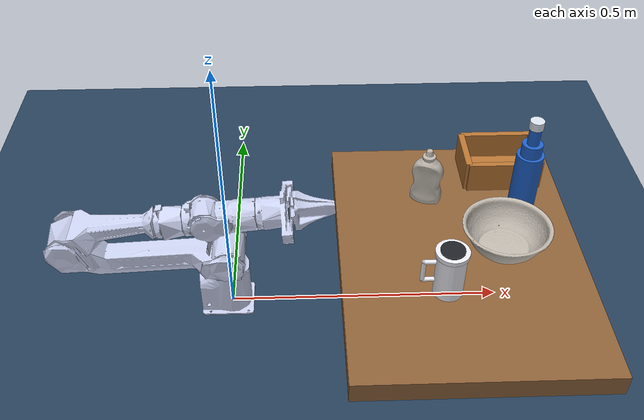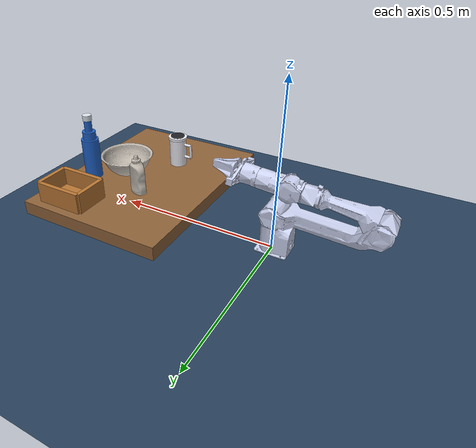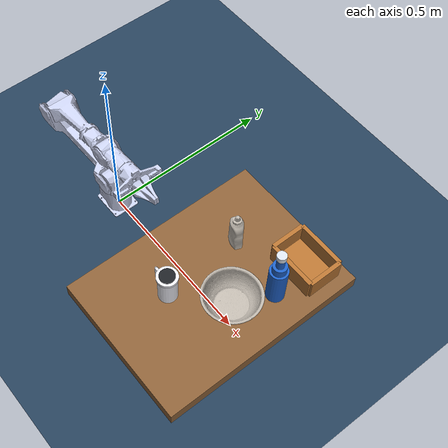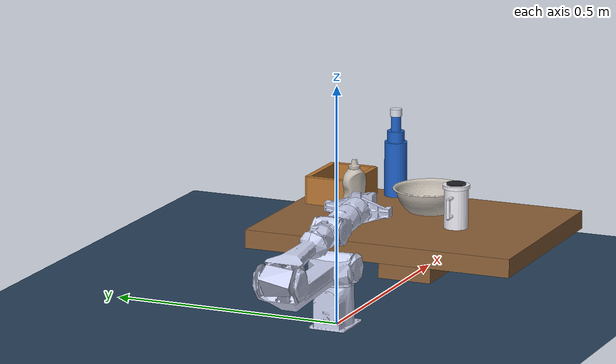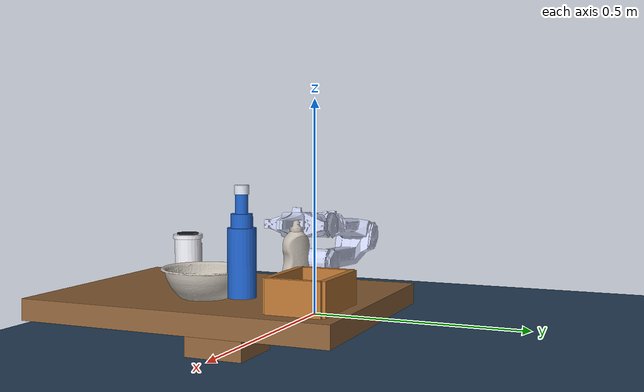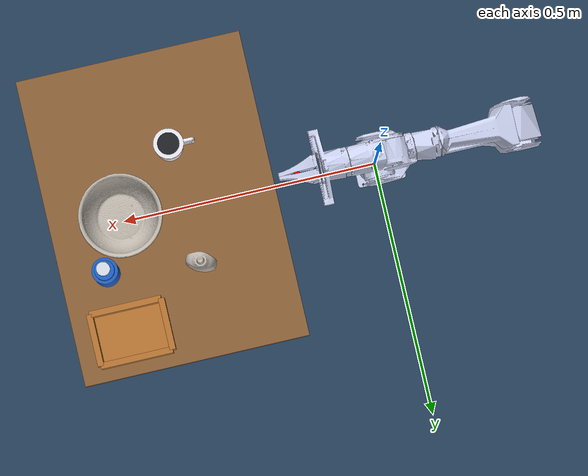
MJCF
<mujoco model="piper_real_multitask_scene">
  <include file="piper_real.xml"/>

  <statistic center="0.35 0 0.25" extent="0.9"/>

  <visual>
    <headlight diffuse="0.6 0.6 0.6" ambient="0.35 0.35 0.35" specular="0 0 0"/>
    <rgba haze="0.15 0.25 0.35 1"/>
    <global azimuth="140" elevation="-25" offwidth="1280" offheight="720"/>
  </visual>

  <asset>
    <texture type="skybox" builtin="gradient" rgb1="0.3 0.5 0.7" rgb2="0 0 0" width="512" height="3072"/>
    <texture type="2d" name="groundplane" builtin="checker" mark="edge" rgb1="0.2 0.3 0.4"
      rgb2="0.1 0.2 0.3" markrgb="0.8 0.8 0.8" width="300" height="300"/>
    <material name="groundplane" texture="groundplane" texuniform="true" texrepeat="5 5" reflectance="0.0"/>
    <material name="table_mat" rgba="0.55 0.38 0.22 1" reflectance="0.0"/>
    <material name="cup_mat" rgba="0.92 0.92 0.95 1"/>
    <material name="cup_inner_mat" rgba="0.42 0.43 0.46 1"/>
    <material name="cup_shadow_mat" rgba="0.12 0.13 0.15 1"/>
    <material name="demo_bottle_mat" rgba="0.12 0.38 0.78 1"/>
    <material name="demo_bottle_cap_mat" rgba="0.85 0.88 0.92 1"/>
    <material name="demo_box_mat" rgba="0.72 0.46 0.20 1"/>

    <!-- YCB 024_bowl: photo-scanned ceramic bowl. The texture is what makes COCO-YOLO detect a
         'bowl' (untextured synthetic bowls are not recognized -- see DEVLOG). Shared asset. -->
    <mesh name="bowl_ycb" file="../piper/assets/bowl_ycb.obj"/>
    <texture name="bowl_ycb_tex" type="2d" file="../piper/assets/bowl_ycb.png"/>
    <material name="bowl_ycb_mat" texture="bowl_ycb_tex" specular="0.3" shininess="0.4"/>
    <!-- YCB 006_mustard_bottle, scaled 0.6 so its narrow axis (~40 mm) fits the gripper. -->
    <mesh name="bottle_ycb" file="../piper/assets/bottle_ycb.obj" scale="0.6 0.6 0.6"/>
    <texture name="bottle_ycb_tex" type="2d" file="../piper/assets/bottle_ycb.png"/>
    <material name="bottle_ycb_mat" texture="bottle_ycb_tex" specular="0.2" shininess="0.3"/>
  </asset>

  <worldbody>
    <light pos="0.35 0 1.6" dir="0 0 -1" directional="true"/>
    <geom name="floor" size="0 0 0.05" type="plane" material="groundplane"/>

    <!-- low table in front of the arm; top surface at z = 0.10 + 0.02 = 0.12 -->
    <body name="table" pos="0.42 0 0">
      <geom name="table_top" type="box" size="0.22 0.30 0.02" pos="0 0 0.10" material="table_mat"/>
      <geom name="table_ped" type="box" size="0.06 0.06 0.05" pos="0 0 0.05" material="table_mat"/>
    </body>

    <!-- cup: graspable mug. Main cylinder = physical collision/mass; extra zero-contact geoms
         (rim, inner shadow, handle) make YOLO see a cup instead of a plain cylinder. -->
    <body name="cup" pos="0.38 -0.11 0.17">
      <freejoint/>
      <geom name="cup_body_collision" type="cylinder" size="0.026 0.045" material="cup_mat"
        density="235" friction="1.5 0.1 0.01"/>
      <geom name="cup_rim" type="cylinder" size="0.029 0.004" pos="0 0 0.045"
        material="cup_mat" density="0" contype="0" conaffinity="0"/>
      <geom name="cup_opening" type="cylinder" size="0.021 0.002" pos="0 0 0.050"
        material="cup_shadow_mat" density="0" contype="0" conaffinity="0"/>
      <geom name="cup_inner_wall" type="cylinder" size="0.022 0.030" pos="0 0 0.016"
        material="cup_inner_mat" density="0" contype="0" conaffinity="0"/>
      <geom name="cup_handle_upper" type="capsule" size="0.004"
        fromto="-0.024 0 0.025 -0.046 0 0.025"
        material="cup_mat" density="0" contype="0" conaffinity="0"/>
      <geom name="cup_handle_lower" type="capsule" size="0.004"
        fromto="-0.024 0 -0.015 -0.046 0 -0.015"
        material="cup_mat" density="0" contype="0" conaffinity="0"/>
      <geom name="cup_handle_outer" type="capsule" size="0.004"
        fromto="-0.046 0 -0.015 -0.046 0 0.025"
        material="cup_mat" density="0" contype="0" conaffinity="0"/>
    </body>

    <body name="ycb_bottle" pos="0.37 0.12 0.14">
      <freejoint/>
      <geom name="ycb_bottle_collision" type="cylinder" size="0.026 0.045" pos="0 0 0.045"
        density="235" friction="1.5 0.1 0.01" rgba="0.5 0.5 0.5 0"/>
      <geom name="ycb_bottle_geom" type="mesh" mesh="bottle_ycb" material="bottle_ycb_mat"
        pos="0.0092 0.0141 0" density="0" contype="0" conaffinity="0"/>
    </body>

    <body name="bowl" pos="0.50 0.0 0">
      <geom name="bowl_visual" type="mesh" mesh="bowl_ycb" material="bowl_ycb_mat"
        pos="0.015 0.043 0.121" contype="0" conaffinity="0"/>
      <geom name="bowl_floor" type="cylinder" size="0.070 0.004" pos="0 0 0.126"
        rgba="0.5 0.1 0.1 0" friction="2 0.1 0.01"/>
      <geom name="bowl_rim_n" type="box" size="0.072 0.008 0.020" pos="0 0.072 0.140" rgba="0.5 0.1 0.1 0"/>
      <geom name="bowl_rim_s" type="box" size="0.072 0.008 0.020" pos="0 -0.072 0.140" rgba="0.5 0.1 0.1 0"/>
      <geom name="bowl_rim_e" type="box" size="0.008 0.072 0.020" pos="0.072 0 0.140" rgba="0.5 0.1 0.1 0"/>
      <geom name="bowl_rim_w" type="box" size="0.008 0.072 0.020" pos="-0.072 0 0.140" rgba="0.5 0.1 0.1 0"/>
    </body>

    <!-- Viewer-only context props. Benchmark reset disables these geoms; the demo reset keeps
         them on the positive-y side, outside the yellow target's grasp corridor and main ROI. -->
    <body name="demo_bottle" pos="0.55 0.10 0.195">
      <freejoint/>
      <geom name="demo_bottle_body" type="cylinder" size="0.025 0.060"
        material="demo_bottle_mat" density="240" friction="1.2 0.1 0.01"/>
      <geom name="demo_bottle_shoulder" type="cylinder" size="0.019 0.015"
        pos="0 0 0.069" material="demo_bottle_mat" density="0"/>
      <geom name="demo_bottle_neck" type="cylinder" size="0.011 0.018"
        pos="0 0 0.099" material="demo_bottle_mat" density="0"/>
      <geom name="demo_bottle_cap" type="cylinder" size="0.013 0.008"
        pos="0 0 0.125" material="demo_bottle_cap_mat" density="0"/>
    </body>

    <body name="demo_box" pos="0.53 0.22 0.12">
      <geom name="demo_box_floor" type="box" size="0.070 0.050 0.004"
        pos="0 0 0.004" material="demo_box_mat"/>
      <geom name="demo_box_wall_n" type="box" size="0.070 0.006 0.030"
        pos="0 0.050 0.030" material="demo_box_mat"/>
      <geom name="demo_box_wall_s" type="box" size="0.070 0.006 0.030"
        pos="0 -0.050 0.030" material="demo_box_mat"/>
      <geom name="demo_box_wall_e" type="box" size="0.006 0.050 0.030"
        pos="0.070 0 0.030" material="demo_box_mat"/>
      <geom name="demo_box_wall_w" type="box" size="0.006 0.050 0.030"
        pos="-0.070 0 0.030" material="demo_box_mat"/>
    </body>

    <!-- fixed world camera aimed at the table region (evidence framing + a stable YOLO fallback). -->
    <camera name="world_cam" pos="0.45 -0.60 0.55" mode="targetbody" target="table" fovy="52"/>
  </worldbody>
</mujoco>

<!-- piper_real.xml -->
<mujoco model="piper_real">
  <!-- No meshdir: robot mesh files carry the "meshes/" prefix, so a scene that includes this
       file can also reference sibling assets (e.g. ../piper/assets/*.obj) without a meshdir clash. -->
  <compiler angle="radian"/>
  <option integrator="implicitfast" cone="elliptic" impratio="10"/>

  <default>
    <default class="piper">
      <joint frictionloss="0.2" armature="0.01"/>
      <default class="finger">
        <joint frictionloss="0" armature="0.005"/>
      </default>
    </default>
  </default>

  <asset>
    <mesh name="base_link" content_type="model/stl" file="meshes/base_link.STL"/>
    <mesh name="link1" content_type="model/stl" file="meshes/link1.STL"/>
    <mesh name="link2" content_type="model/stl" file="meshes/link2.STL"/>
    <mesh name="link3" content_type="model/stl" file="meshes/link3.STL"/>
    <mesh name="link4" content_type="model/stl" file="meshes/link4.STL"/>
    <mesh name="link5" content_type="model/stl" file="meshes/link5.STL"/>
    <mesh name="link6" content_type="model/stl" file="meshes/link6.STL"/>
    <mesh name="gripper_base" content_type="model/stl" file="meshes/gripper_base.STL"/>
    <mesh name="link7" content_type="model/stl" file="meshes/link7.STL"/>
    <mesh name="link8" content_type="model/stl" file="meshes/link8.STL"/>
  </asset>

  <worldbody>
    <body name="base_link" pos="0 0 0" gravcomp="1">
      <geom type="mesh" contype="0" conaffinity="0" group="1" density="0" rgba="0.792157 0.819608 0.933333 1" mesh="base_link"/>
      <geom type="mesh" group="3" rgba="0.792157 0.819608 0.933333 1" mesh="base_link" contype="2" conaffinity="2"/>
      <body name="link1" pos="0 0 0.123" childclass="piper" gravcomp="1">
      <inertial pos="0.000121505 0.000104632 -0.00438597" quat="0.682111 0.730899 0.0143111 -0.0175062" mass="0.71" diaginertia="0.000489262 0.000439887 0.000404551"/>
      <joint name="joint1" pos="0 0 0" axis="0 0 1" range="-2.618 2.168" actuatorfrcrange="-100 100"/>
      <geom type="mesh" contype="0" conaffinity="0" group="1" density="0" rgba="0.792157 0.819608 0.933333 1" mesh="link1"/>
      <geom type="mesh" group="3" rgba="0.792157 0.819608 0.933333 1" mesh="link1" contype="2" conaffinity="2"/>
      <body name="link2" quat="0.0480084 -0.0480134 -0.705476 -0.705474" gravcomp="1">
        <inertial pos="0.198666 -0.0109269 0.00142122" quat="0.510131 0.475585 0.525075 0.48773" mass="1.17" diaginertia="0.0679032 0.067745 0.00111966"/>
        <joint name="joint2" pos="0 0 0" axis="0 0 1" range="0 3.14" actuatorfrcrange="-100 100"/>
        <geom type="mesh" contype="0" conaffinity="0" group="1" density="0" rgba="0.792157 0.819608 0.933333 1" mesh="link2"/>
        <geom type="mesh" group="3" rgba="0.792157 0.819608 0.933333 1" mesh="link2" contype="2" conaffinity="2"/>
        <body name="link3" pos="0.28503 0 0" quat="0.623996 0 0 -0.781427" gravcomp="1">
          <inertial pos="-0.0202738 -0.133915 -0.000458683" quat="0.706282 0.705111 0.0532202 0.0339395" mass="0.5" diaginertia="0.0138227 0.0138032 0.000244685"/>
          <joint name="joint3" pos="0 0 0" axis="0 0 1" range="-2.967 0" actuatorfrcrange="-100 100"/>
          <geom type="mesh" contype="0" conaffinity="0" group="1" density="0" rgba="0.792157 0.819608 0.933333 1" mesh="link3"/>
          <geom type="mesh" group="3" rgba="0.792157 0.819608 0.933333 1" mesh="link3" contype="2" conaffinity="2"/>
          <body name="link4" pos="-0.021984 -0.25075 0" quat="0.707105 0.707108 0 0" gravcomp="1">
            <inertial pos="-9.66636e-05 0.000876064 -0.00496881" quat="0.714689 -0.0948484 0.0635223 0.690064" mass="0.38" diaginertia="0.000191586 0.000185052 0.000152863"/>
            <joint name="joint4" pos="0 0 0" axis="0 0 1" range="-1.745 1.745" actuatorfrcrange="-100 100"/>
            <geom type="mesh" contype="0" conaffinity="0" group="1" density="0" rgba="0.792157 0.819608 0.933333 1" mesh="link4"/>
            <geom type="mesh" group="3" rgba="0.792157 0.819608 0.933333 1" mesh="link4" contype="2" conaffinity="2"/>
            <body name="link5" quat="0.707105 -0.707108 0 0" gravcomp="1">
              <inertial pos="-4.10554e-05 -0.0566487 -0.00372058" quat="0.709589 0.704614 0.00134613 -0.00132656" mass="0.383" diaginertia="0.00166169 0.00164328 0.000185028"/>
              <joint name="joint5" pos="0 0 0" axis="0 0 1" range="-1.22 1.22" actuatorfrcrange="-100 100"/>
              <geom type="mesh" contype="0" conaffinity="0" group="1" density="0" rgba="0.792157 0.819608 0.933333 1" mesh="link5"/>
              <geom type="mesh" group="3" rgba="0.792157 0.819608 0.933333 1" mesh="link5" contype="2" conaffinity="2"/>
              <body name="link6" pos="8.8259e-05 -0.091 0" quat="0.707105 0.707108 0 0" gravcomp="1">
                <inertial pos="-0.000182344 7.9409e-05 0.0316207" quat="0.999977 6.30204e-05 0.00678001 0.000789387" mass="0.457" diaginertia="0.000938049 0.000723078 0.000395388"/>
                <joint name="joint6" pos="0 0 0" axis="0 0 1" range="-2.0944 2.0944" actuatorfrcrange="-100 100"/>
                <geom type="mesh" contype="0" conaffinity="0" group="1" density="0" rgba="0.898039 0.917647 0.929412 1" mesh="link6"/>
                <geom type="mesh" group="3" rgba="0.898039 0.917647 0.929412 1" mesh="link6" contype="2" conaffinity="2"/>
                <geom type="mesh" contype="0" conaffinity="0" group="1" density="0" rgba="0.792157 0.819608 0.933333 1" mesh="gripper_base"/>
                <geom type="mesh" group="3" rgba="0.792157 0.819608 0.933333 1" mesh="gripper_base" contype="2" conaffinity="2"/>
                <camera name="wrist_cam" pos="-0.08 0 -0.10" xyaxes="0 -1 0 -0.980 0 0.200" fovy="58"/>
                <site name="tcp" pos="0 0 0.10" size="0.006" rgba="1 0 0 1"/>
                <body name="link7" pos="0 0 0.1358" quat="0.707105 0.707108 0 0" gravcomp="1">
                  <inertial pos="0.000651232 -0.049193 0.00972259" quat="0.477798 0.572974 -0.518028 0.418398" mass="0.025" diaginertia="7.74531e-05 7.36783e-05 5.0886e-06"/>
                  <joint name="joint7" pos="0 0 0" axis="0 0 1" type="slide" range="0 0.035" actuatorfrcrange="-10 10" class="finger"/>
                  <geom type="mesh" contype="0" conaffinity="0" group="1" density="0" rgba="0.792157 0.819608 0.933333 1" mesh="link7"/>
                  <geom type="mesh" group="3" rgba="0.792157 0.819608 0.933333 1" mesh="link7" friction="2 0.1 0.01"/>
                </body>
                <body name="link8" pos="0 0 0.1358" quat="-2.59734e-06 -2.59735e-06 -0.707108 -0.707105" gravcomp="1">
                  <inertial pos="0.000651232 -0.049193 0.00972259" quat="0.477798 0.572974 -0.518028 0.418398" mass="0.025" diaginertia="7.74531e-05 7.36783e-05 5.0886e-06"/>
                  <joint name="joint8" pos="0 0 0" axis="0 0 -1" type="slide" range="-0.035 0" actuatorfrcrange="-10 10" class="finger"/>
                  <geom type="mesh" contype="0" conaffinity="0" group="1" density="0" rgba="0.792157 0.819608 0.933333 1" mesh="link8"/>
                  <geom type="mesh" group="3" rgba="0.792157 0.819608 0.933333 1" mesh="link8" friction="2 0.1 0.01"/>
                </body>
              </body>
            </body>
          </body>
        </body>
      </body>
      </body>
    </body>
  </worldbody>

  <contact>
    <!-- adjacent links interpenetrate at their shared joint; exclude to avoid solver churn.
         base_link<->link1 in particular jams joint1 (base yaw) if not excluded. -->
    <exclude body1="base_link" body2="link1"/>
    <exclude body1="link1" body2="link2"/>
    <exclude body1="link2" body2="link3"/>
    <exclude body1="link3" body2="link4"/>
    <exclude body1="link4" body2="link5"/>
    <exclude body1="link5" body2="link6"/>
    <exclude body1="link6" body2="link7"/>
    <exclude body1="link6" body2="link8"/>
    <exclude body1="link7" body2="link8"/>
  </contact>

  <equality>
    <joint joint1="joint8" joint2="joint7" polycoef="0 -1 0 0 0"/>
  </equality>

  <actuator>
    <position name="joint1" joint="joint1" class="piper" kp="120" kv="12"/>
    <position name="joint2" joint="joint2" class="piper" kp="120" kv="12"/>
    <position name="joint3" joint="joint3" class="piper" kp="120" kv="12"/>
    <position name="joint4" joint="joint4" class="piper" kp="60" kv="6"/>
    <position name="joint5" joint="joint5" class="piper" kp="30" kv="3"/>
    <position name="joint6" joint="joint6" class="piper" kp="20" kv="2"/>
    <position name="gripper" joint="joint7" class="finger" kp="60" kv="4"/>
  </actuator>

  <keyframe>
    <!-- ready pose: arm raised over the table, gripper open -->
    <key name="home" qpos="0 1.2 -1.2 0 0.6 0 0 0" ctrl="0 1.2 -1.2 0 0.6 0 0.035"/>
  </keyframe>
</mujoco>
